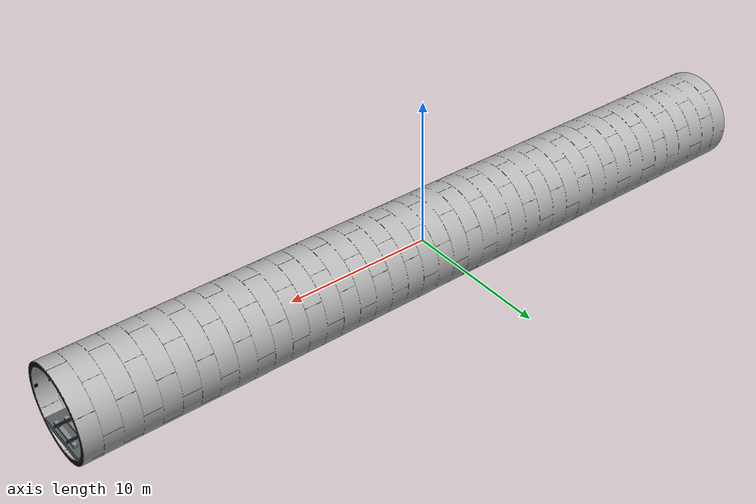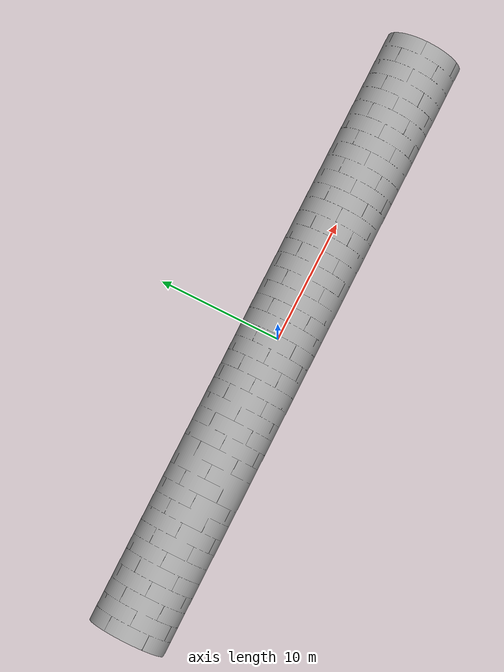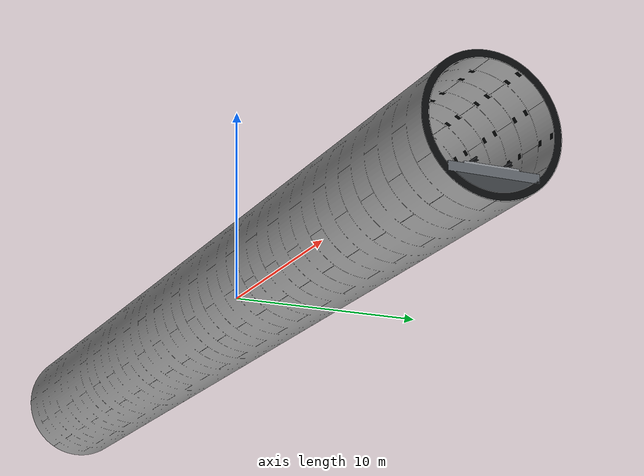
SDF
<?xml version="1.0"?>
<sdf version="1.7">
  <model name="subway_tunnel">
    <static>true</static>
    <link name="tunnel">
      <visual name="visual">
        <geometry>
          <mesh>
            <uri>model://subway_tunnel/meshes/tunnel.dae</uri>
            <scale>1 1 1</scale>
          </mesh>
        </geometry>
        <cast_shadows>true</cast_shadows>
      </visual>

      <collision name="collision">
        <geometry>
          <mesh>
            <uri>model://subway_tunnel/meshes/tunnel_collision.stl</uri>
            <scale>1 1 1</scale>
          </mesh>
        </geometry>
        <surface>
          <friction>
            <ode>
              <mu>1</mu>
              <mu2>1</mu2>
            </ode>
          </friction>
          <contact>
            <ode>
              <kp>1e+13</kp>
              <kd>1</kd>
              <max_vel>0.01</max_vel>
              <min_depth>0</min_depth>
            </ode>
          </contact>
        </surface>
      </collision>
    </link>
  </model>
</sdf>
